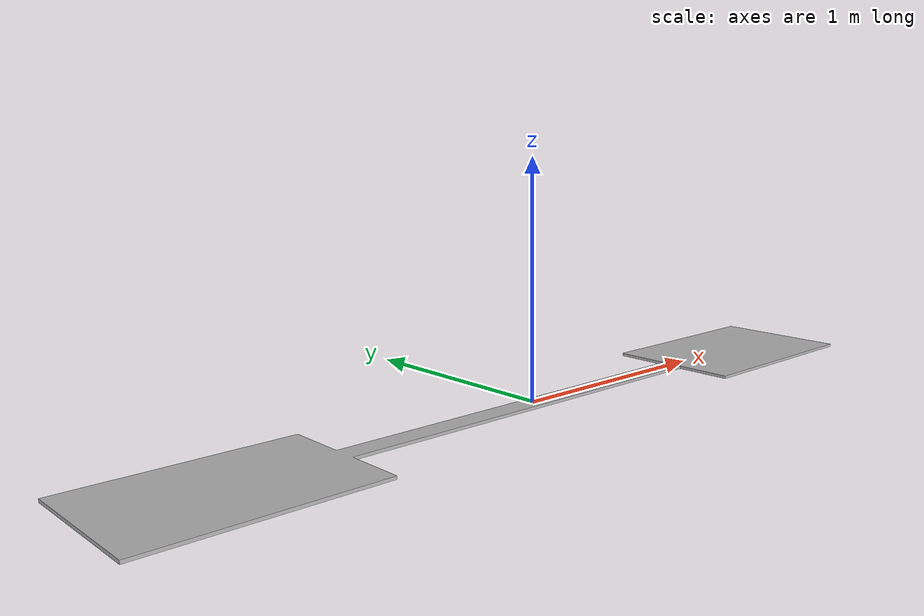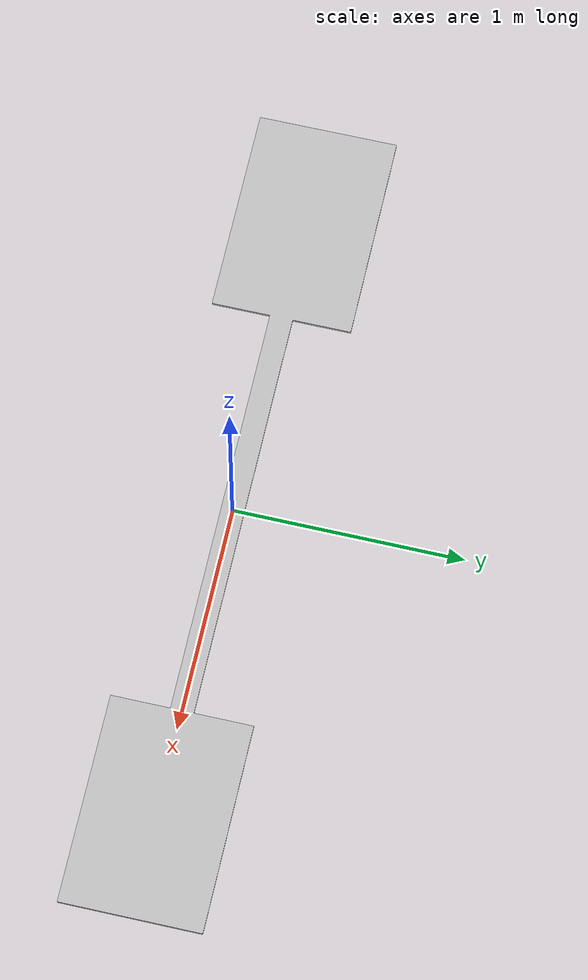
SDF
<?xml version="1.0"?>
<sdf version="1.6">
    <model name="beam_world_10cm">
      <static>true</static>
      <link name="body">
        <visual name="visual">
          <geometry>
            <mesh>
                <uri>meshes/beam_world_10cm.stl</uri>
            </mesh>
          </geometry>
        </visual>
        <collision name="collision">
          <geometry>
            <mesh>
                <uri>meshes/beam_world_10cm.stl</uri>
            </mesh>
          </geometry>
          <surface>
            <friction>
              <ode>
                <mu>100</mu>
                <mu2>100</mu2>
              </ode>
            </friction>
          </surface>
        </collision>
      </link>
    </model>
</sdf>
